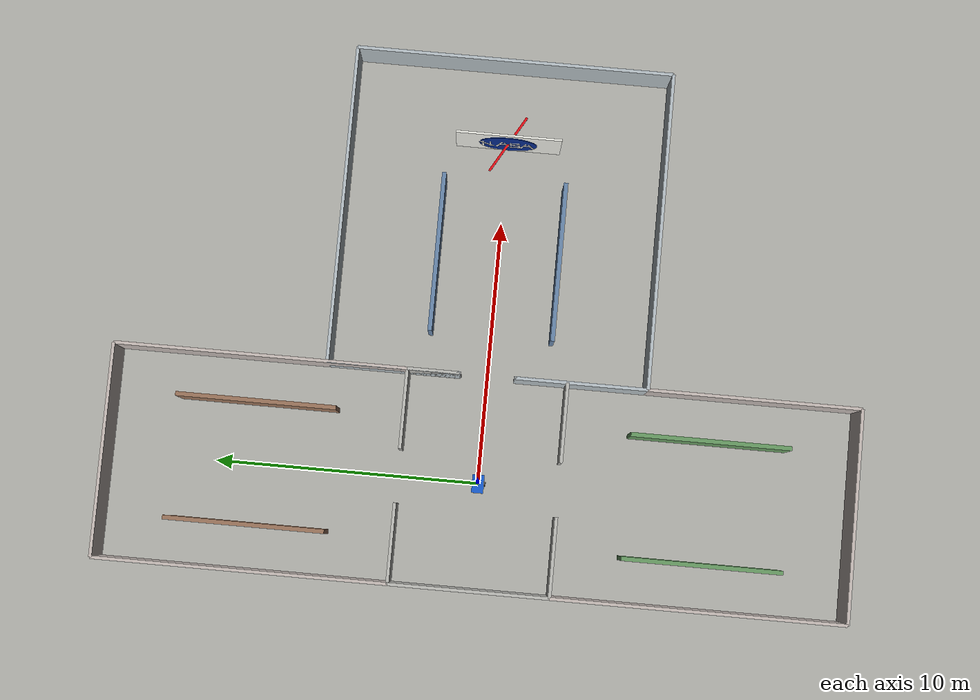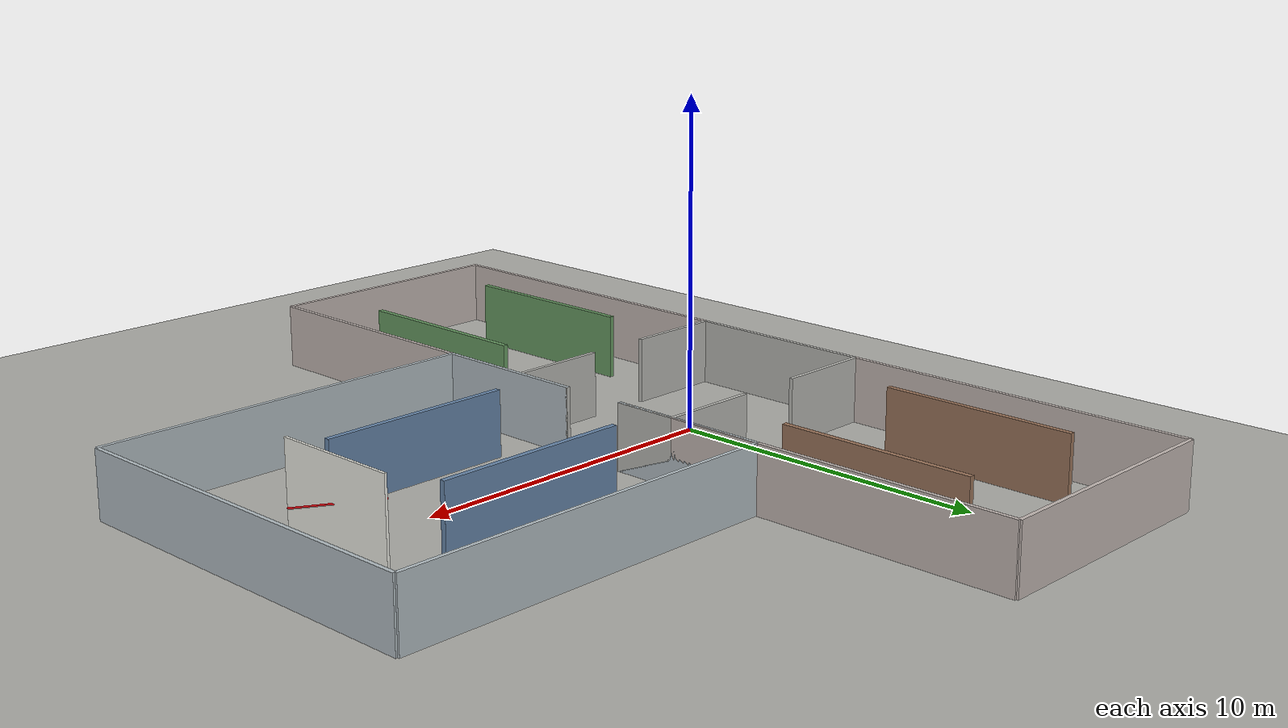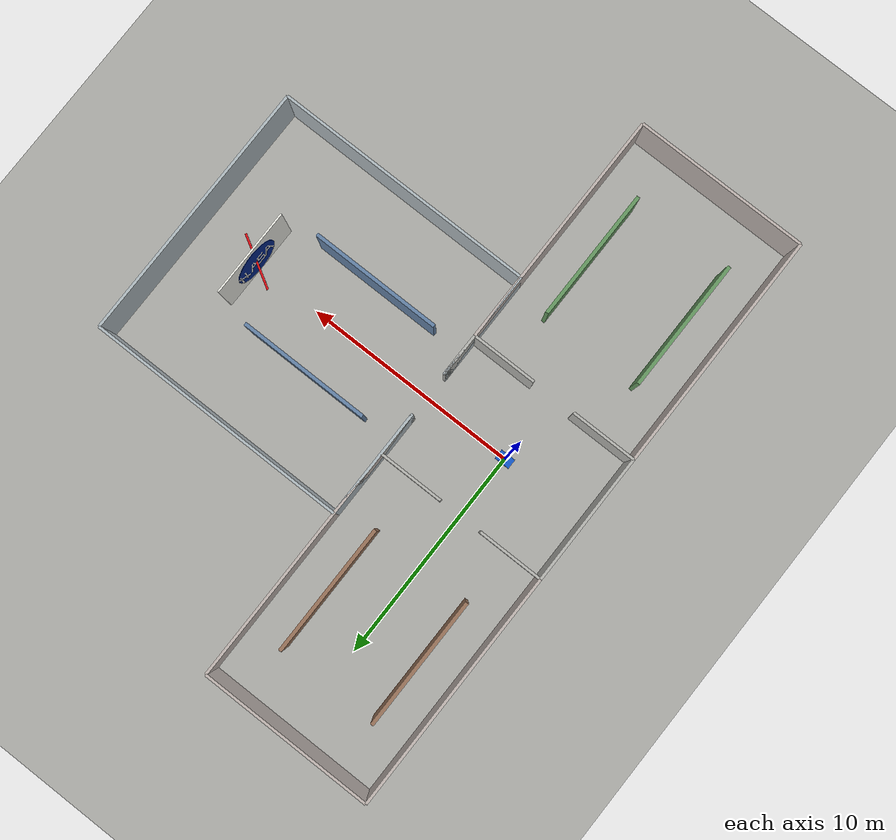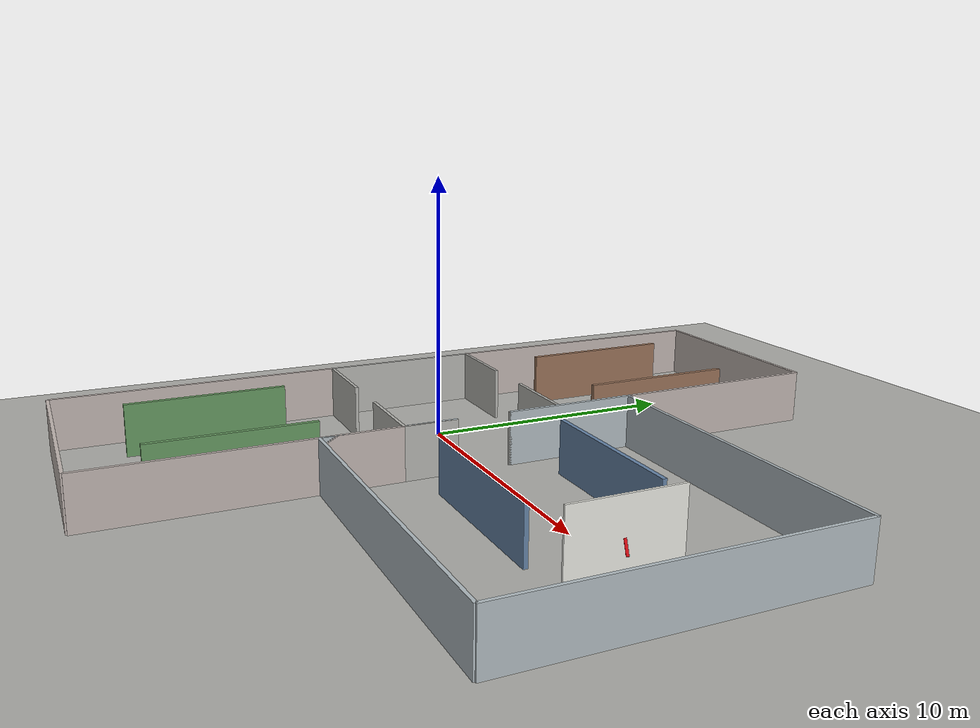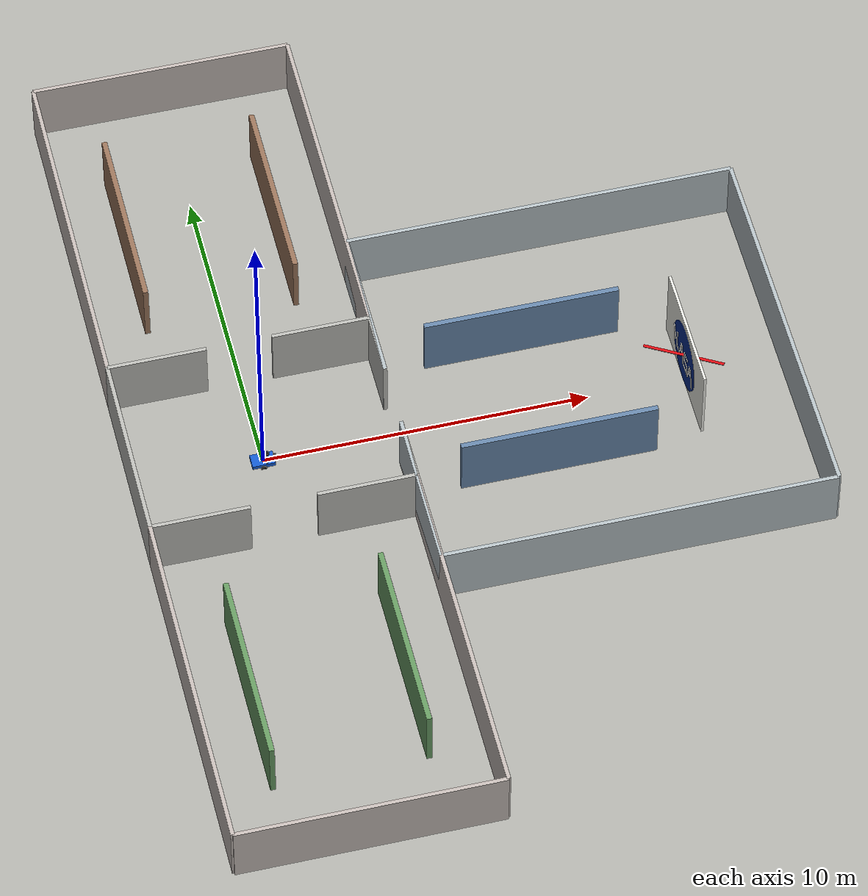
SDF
<?xml version="1.0"?>
<sdf version="1.9">
  <world name="dlio_score_ring_test">
    <plugin filename="gz-sim-physics-system" name="gz::sim::systems::Physics"/>
    <plugin filename="gz-sim-user-commands-system" name="gz::sim::systems::UserCommands"/>
    <plugin filename="gz-sim-scene-broadcaster-system" name="gz::sim::systems::SceneBroadcaster"/>
    <plugin filename="gz-sim-sensors-system" name="gz::sim::systems::Sensors">
      <render_engine>ogre2</render_engine>
    </plugin>
    <plugin filename="gz-sim-imu-system" name="gz::sim::systems::Imu"/>

    <light name="sun" type="directional">
      <pose>0 0 8 0 0 0</pose>
      <diffuse>0.85 0.85 0.85 1</diffuse>
      <specular>0.2 0.2 0.2 1</specular>
      <direction>-0.4 0.2 -1</direction>
    </light>

    <model name="ground">
      <static>true</static>
      <link name="link">
        <collision name="collision">
          <geometry>
            <plane>
              <normal>0 0 1</normal>
              <size>36 28</size>
            </plane>
          </geometry>
        </collision>
        <visual name="visual">
          <geometry>
            <plane>
              <normal>0 0 1</normal>
              <size>36 28</size>
            </plane>
          </geometry>
          <material>
            <diffuse>0.68 0.68 0.66 1</diffuse>
          </material>
        </visual>
      </link>
    </model>

    <model name="center_west_wall">
      <static>true</static>
      <pose>-4 0 1 0 0 0</pose>
      <link name="link">
        <collision name="collision"><geometry><box><size>0.12 6 2</size></box></geometry></collision>
        <visual name="visual"><geometry><box><size>0.12 6 2</size></box></geometry><material><diffuse>0.72 0.72 0.70 1</diffuse></material></visual>
      </link>
    </model>
    <model name="center_north_west_wall">
      <static>true</static>
      <pose>-2.5 3 1 0 0 0</pose>
      <link name="link">
        <collision name="collision"><geometry><box><size>3 0.12 2</size></box></geometry></collision>
        <visual name="visual"><geometry><box><size>3 0.12 2</size></box></geometry><material><diffuse>0.72 0.72 0.70 1</diffuse></material></visual>
      </link>
    </model>
    <model name="center_north_east_wall">
      <static>true</static>
      <pose>2.5 3 1 0 0 0</pose>
      <link name="link">
        <collision name="collision"><geometry><box><size>3 0.12 2</size></box></geometry></collision>
        <visual name="visual"><geometry><box><size>3 0.12 2</size></box></geometry><material><diffuse>0.72 0.72 0.70 1</diffuse></material></visual>
      </link>
    </model>
    <model name="center_south_west_wall">
      <static>true</static>
      <pose>-2.5 -3 1 0 0 0</pose>
      <link name="link">
        <collision name="collision"><geometry><box><size>3 0.12 2</size></box></geometry></collision>
        <visual name="visual"><geometry><box><size>3 0.12 2</size></box></geometry><material><diffuse>0.72 0.72 0.70 1</diffuse></material></visual>
      </link>
    </model>
    <model name="center_south_east_wall">
      <static>true</static>
      <pose>2.5 -3 1 0 0 0</pose>
      <link name="link">
        <collision name="collision"><geometry><box><size>3 0.12 2</size></box></geometry></collision>
        <visual name="visual"><geometry><box><size>3 0.12 2</size></box></geometry><material><diffuse>0.72 0.72 0.70 1</diffuse></material></visual>
      </link>
    </model>
    <model name="center_east_upper_wall">
      <static>true</static>
      <pose>4 2 1 0 0 0</pose>
      <link name="link">
        <collision name="collision"><geometry><box><size>0.12 2 2</size></box></geometry></collision>
        <visual name="visual"><geometry><box><size>0.12 2 2</size></box></geometry><material><diffuse>0.72 0.72 0.70 1</diffuse></material></visual>
      </link>
    </model>
    <model name="center_east_lower_wall">
      <static>true</static>
      <pose>4 -2 1 0 0 0</pose>
      <link name="link">
        <collision name="collision"><geometry><box><size>0.12 2 2</size></box></geometry></collision>
        <visual name="visual"><geometry><box><size>0.12 2 2</size></box></geometry><material><diffuse>0.72 0.72 0.70 1</diffuse></material></visual>
      </link>
    </model>

    <model name="east_room_north_wall">
      <static>true</static>
      <pose>10 6 1 0 0 0</pose>
      <link name="link">
        <collision name="collision"><geometry><box><size>12 0.12 2</size></box></geometry></collision>
        <visual name="visual"><geometry><box><size>12 0.12 2</size></box></geometry><material><diffuse>0.70 0.74 0.76 1</diffuse></material></visual>
      </link>
    </model>
    <model name="east_room_south_wall">
      <static>true</static>
      <pose>10 -6 1 0 0 0</pose>
      <link name="link">
        <collision name="collision"><geometry><box><size>12 0.12 2</size></box></geometry></collision>
        <visual name="visual"><geometry><box><size>12 0.12 2</size></box></geometry><material><diffuse>0.70 0.74 0.76 1</diffuse></material></visual>
      </link>
    </model>
    <model name="east_room_east_wall">
      <static>true</static>
      <pose>16 0 1 0 0 0</pose>
      <link name="link">
        <collision name="collision"><geometry><box><size>0.12 12 2</size></box></geometry></collision>
        <visual name="visual"><geometry><box><size>0.12 12 2</size></box></geometry><material><diffuse>0.70 0.74 0.76 1</diffuse></material></visual>
      </link>
    </model>
    <model name="east_room_west_upper_wall">
      <static>true</static>
      <pose>4 3.5 1 0 0 0</pose>
      <link name="link">
        <collision name="collision"><geometry><box><size>0.12 5 2</size></box></geometry></collision>
        <visual name="visual"><geometry><box><size>0.12 5 2</size></box></geometry><material><diffuse>0.70 0.74 0.76 1</diffuse></material></visual>
      </link>
    </model>
    <model name="east_room_west_lower_wall">
      <static>true</static>
      <pose>4 -3.5 1 0 0 0</pose>
      <link name="link">
        <collision name="collision"><geometry><box><size>0.12 5 2</size></box></geometry></collision>
        <visual name="visual"><geometry><box><size>0.12 5 2</size></box></geometry><material><diffuse>0.70 0.74 0.76 1</diffuse></material></visual>
      </link>
    </model>
    <model name="east_occluder_upper">
      <static>true</static>
      <pose>8.5 2.3 1 0 0 0</pose>
      <link name="link">
        <collision name="collision"><geometry><box><size>6 0.16 2</size></box></geometry></collision>
        <visual name="visual"><geometry><box><size>6 0.16 2</size></box></geometry><material><diffuse>0.40 0.52 0.66 1</diffuse></material></visual>
      </link>
    </model>
    <model name="east_occluder_lower">
      <static>true</static>
      <pose>8.5 -2.3 1 0 0 0</pose>
      <link name="link">
        <collision name="collision"><geometry><box><size>6 0.16 2</size></box></geometry></collision>
        <visual name="visual"><geometry><box><size>6 0.16 2</size></box></geometry><material><diffuse>0.40 0.52 0.66 1</diffuse></material></visual>
      </link>
    </model>

    <model name="north_room_north_wall">
      <static>true</static>
      <pose>0 14 1 0 0 0</pose>
      <link name="link">
        <collision name="collision"><geometry><box><size>8 0.12 2</size></box></geometry></collision>
        <visual name="visual"><geometry><box><size>8 0.12 2</size></box></geometry><material><diffuse>0.76 0.72 0.70 1</diffuse></material></visual>
      </link>
    </model>
    <model name="north_room_west_wall">
      <static>true</static>
      <pose>-4 8.5 1 0 0 0</pose>
      <link name="link">
        <collision name="collision"><geometry><box><size>0.12 11 2</size></box></geometry></collision>
        <visual name="visual"><geometry><box><size>0.12 11 2</size></box></geometry><material><diffuse>0.76 0.72 0.70 1</diffuse></material></visual>
      </link>
    </model>
    <model name="north_room_east_wall">
      <static>true</static>
      <pose>4 8.5 1 0 0 0</pose>
      <link name="link">
        <collision name="collision"><geometry><box><size>0.12 11 2</size></box></geometry></collision>
        <visual name="visual"><geometry><box><size>0.12 11 2</size></box></geometry><material><diffuse>0.76 0.72 0.70 1</diffuse></material></visual>
      </link>
    </model>
    <model name="north_occluder_left">
      <static>true</static>
      <pose>-2.3 8.5 1 0 0 0</pose>
      <link name="link">
        <collision name="collision"><geometry><box><size>0.16 6 2</size></box></geometry></collision>
        <visual name="visual"><geometry><box><size>0.16 6 2</size></box></geometry><material><diffuse>0.60 0.45 0.35 1</diffuse></material></visual>
      </link>
    </model>
    <model name="north_occluder_right">
      <static>true</static>
      <pose>2.3 8.5 1 0 0 0</pose>
      <link name="link">
        <collision name="collision"><geometry><box><size>0.16 6 2</size></box></geometry></collision>
        <visual name="visual"><geometry><box><size>0.16 6 2</size></box></geometry><material><diffuse>0.60 0.45 0.35 1</diffuse></material></visual>
      </link>
    </model>

    <model name="south_room_south_wall">
      <static>true</static>
      <pose>0 -14 1 0 0 0</pose>
      <link name="link">
        <collision name="collision"><geometry><box><size>8 0.12 2</size></box></geometry></collision>
        <visual name="visual"><geometry><box><size>8 0.12 2</size></box></geometry><material><diffuse>0.76 0.72 0.70 1</diffuse></material></visual>
      </link>
    </model>
    <model name="south_room_west_wall">
      <static>true</static>
      <pose>-4 -8.5 1 0 0 0</pose>
      <link name="link">
        <collision name="collision"><geometry><box><size>0.12 11 2</size></box></geometry></collision>
        <visual name="visual"><geometry><box><size>0.12 11 2</size></box></geometry><material><diffuse>0.76 0.72 0.70 1</diffuse></material></visual>
      </link>
    </model>
    <model name="south_room_east_wall">
      <static>true</static>
      <pose>4 -8.5 1 0 0 0</pose>
      <link name="link">
        <collision name="collision"><geometry><box><size>0.12 11 2</size></box></geometry></collision>
        <visual name="visual"><geometry><box><size>0.12 11 2</size></box></geometry><material><diffuse>0.76 0.72 0.70 1</diffuse></material></visual>
      </link>
    </model>
    <model name="south_occluder_left">
      <static>true</static>
      <pose>-2.3 -8.5 1 0 0 0</pose>
      <link name="link">
        <collision name="collision"><geometry><box><size>0.16 6 2</size></box></geometry></collision>
        <visual name="visual"><geometry><box><size>0.16 6 2</size></box></geometry><material><diffuse>0.40 0.60 0.38 1</diffuse></material></visual>
      </link>
    </model>
    <model name="south_occluder_right">
      <static>true</static>
      <pose>2.3 -8.5 1 0 0 0</pose>
      <link name="link">
        <collision name="collision"><geometry><box><size>0.16 6 2</size></box></geometry></collision>
        <visual name="visual"><geometry><box><size>0.16 6 2</size></box></geometry><material><diffuse>0.40 0.60 0.38 1</diffuse></material></visual>
      </link>
    </model>

    <model name="nasa_logo_target">
      <static>true</static>
      <pose>13 0 1.15 0 0 3.14159265</pose>
      <link name="link">
        <collision name="sign_collision">
          <geometry><box><size>0.10 3.6 2.4</size></box></geometry>
        </collision>
        <visual name="sign_backing">
          <geometry><box><size>0.08 4.0 2.7</size></box></geometry>
          <material><diffuse>0.93 0.93 0.90 1</diffuse></material>
        </visual>
        <visual name="blue_logo_disk">
          <pose>0.052 0 0 0 1.57079632679 0</pose>
          <geometry><cylinder><radius>1.10</radius><length>0.02</length></cylinder></geometry>
          <material><diffuse>0.02 0.16 0.55 1</diffuse></material>
        </visual>
        <visual name="red_vector">
          <pose>0.066 0 0.04 0 1.57079632679 1.04719755</pose>
          <geometry><box><size>0.025 2.50 0.090</size></box></geometry>
          <material><diffuse>0.88 0.05 0.08 1</diffuse></material>
        </visual>
        <visual name="letter_n_left"><pose>0.078 -0.96 -0.06 0 0 0</pose><geometry><box><size>0.02 0.070 0.70</size></box></geometry><material><diffuse>1 1 1 1</diffuse></material></visual>
        <visual name="letter_n_right"><pose>0.078 -0.68 -0.06 0 0 0</pose><geometry><box><size>0.02 0.070 0.70</size></box></geometry><material><diffuse>1 1 1 1</diffuse></material></visual>
        <visual name="letter_n_diag"><pose>0.08 -0.82 -0.06 0.72 0 0</pose><geometry><box><size>0.02 0.070 0.84</size></box></geometry><material><diffuse>1 1 1 1</diffuse></material></visual>
        <visual name="letter_a_left"><pose>0.078 -0.06 -0.06 0.28 0 0</pose><geometry><box><size>0.02 0.070 0.72</size></box></geometry><material><diffuse>1 1 1 1</diffuse></material></visual>
        <visual name="letter_a_right"><pose>0.078 -0.34 -0.06 -0.28 0 0</pose><geometry><box><size>0.02 0.070 0.72</size></box></geometry><material><diffuse>1 1 1 1</diffuse></material></visual>
        <visual name="letter_a_bar"><pose>0.08 -0.20 -0.04 1.57079632679 0 0</pose><geometry><box><size>0.02 0.070 0.30</size></box></geometry><material><diffuse>1 1 1 1</diffuse></material></visual>
        <visual name="letter_s_top"><pose>0.078 0.26 -0.38 1.57079632679 0 0</pose><geometry><box><size>0.02 0.070 0.36</size></box></geometry><material><diffuse>1 1 1 1</diffuse></material></visual>
        <visual name="letter_s_mid"><pose>0.078 0.26 -0.06 1.57079632679 0 0</pose><geometry><box><size>0.02 0.070 0.36</size></box></geometry><material><diffuse>1 1 1 1</diffuse></material></visual>
        <visual name="letter_s_bot"><pose>0.078 0.26 0.26 1.57079632679 0 0</pose><geometry><box><size>0.02 0.070 0.36</size></box></geometry><material><diffuse>1 1 1 1</diffuse></material></visual>
        <visual name="letter_s_left"><pose>0.078 0.10 0.10 0 0 0</pose><geometry><box><size>0.02 0.070 0.32</size></box></geometry><material><diffuse>1 1 1 1</diffuse></material></visual>
        <visual name="letter_s_right"><pose>0.078 0.42 -0.22 0 0 0</pose><geometry><box><size>0.02 0.070 0.32</size></box></geometry><material><diffuse>1 1 1 1</diffuse></material></visual>
        <visual name="letter_a2_left"><pose>0.078 0.86 -0.06 0.28 0 0</pose><geometry><box><size>0.02 0.070 0.72</size></box></geometry><material><diffuse>1 1 1 1</diffuse></material></visual>
        <visual name="letter_a2_right"><pose>0.078 0.58 -0.06 -0.28 0 0</pose><geometry><box><size>0.02 0.070 0.72</size></box></geometry><material><diffuse>1 1 1 1</diffuse></material></visual>
        <visual name="letter_a2_bar"><pose>0.08 0.72 -0.04 1.57079632679 0 0</pose><geometry><box><size>0.02 0.070 0.30</size></box></geometry><material><diffuse>1 1 1 1</diffuse></material></visual>
      </link>
    </model>

    <include>
      <uri>model://dlio_car</uri>
      <pose>0 0 0 0 0 0</pose>
    </include>
  </world>
</sdf>

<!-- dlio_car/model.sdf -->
<sdf version="1.9">
  <model name="dlio_car">
    <pose>0 0 0.12 0 0 0</pose>
    <self_collide>false</self_collide>

    <link name="base_link">
      <inertial>
        <mass>12.0</mass>
        <inertia>
          <ixx>0.20</ixx>
          <iyy>0.35</iyy>
          <izz>0.42</izz>
          <ixy>0</ixy>
          <ixz>0</ixz>
          <iyz>0</iyz>
        </inertia>
      </inertial>
      <collision name="base_collision">
        <geometry>
          <box>
            <size>0.70 0.45 0.20</size>
          </box>
        </geometry>
      </collision>
      <visual name="base_visual">
        <geometry>
          <box>
            <size>0.70 0.45 0.20</size>
          </box>
        </geometry>
        <material>
          <diffuse>0.08 0.35 0.80 1</diffuse>
        </material>
      </visual>
    </link>

    <link name="lidar">
      <pose relative_to="base_link">0.12 0 0.33 0 0 0</pose>
      <inertial>
        <mass>0.2</mass>
        <inertia>
          <ixx>0.0004</ixx>
          <iyy>0.0004</iyy>
          <izz>0.0004</izz>
          <ixy>0</ixy>
          <ixz>0</ixz>
          <iyz>0</iyz>
        </inertia>
      </inertial>
      <visual name="lidar_visual">
        <geometry>
          <cylinder>
            <radius>0.08</radius>
            <length>0.08</length>
          </cylinder>
        </geometry>
        <material>
          <diffuse>0.05 0.05 0.05 1</diffuse>
        </material>
      </visual>
      <sensor name="lidar_sensor" type="gpu_lidar">
        <topic>/points_raw</topic>
        <update_rate>10</update_rate>
        <always_on>true</always_on>
        <visualize>true</visualize>
        <ray>
          <scan>
            <horizontal>
              <samples>720</samples>
              <resolution>1</resolution>
              <min_angle>-3.14159265</min_angle>
              <max_angle>3.14159265</max_angle>
            </horizontal>
            <vertical>
              <samples>32</samples>
              <resolution>1</resolution>
              <min_angle>-0.45</min_angle>
              <max_angle>0.35</max_angle>
            </vertical>
          </scan>
          <range>
            <min>0.2</min>
            <max>18.0</max>
            <resolution>0.03</resolution>
          </range>
          <noise>
            <type>gaussian</type>
            <mean>0.0</mean>
            <stddev>0.01</stddev>
          </noise>
        </ray>
      </sensor>
    </link>

    <link name="imu">
      <pose relative_to="base_link">0 0 0.12 0 0 0</pose>
      <inertial>
        <mass>0.05</mass>
        <inertia>
          <ixx>0.00002</ixx>
          <iyy>0.00002</iyy>
          <izz>0.00002</izz>
          <ixy>0</ixy>
          <ixz>0</ixz>
          <iyz>0</iyz>
        </inertia>
      </inertial>
      <visual name="imu_visual">
        <geometry>
          <box>
            <size>0.08 0.06 0.03</size>
          </box>
        </geometry>
        <material>
          <diffuse>0.9 0.75 0.2 1</diffuse>
        </material>
      </visual>
      <sensor name="imu_sensor" type="imu">
        <topic>/imu_raw</topic>
        <update_rate>100</update_rate>
        <always_on>true</always_on>
      </sensor>
    </link>

    <link name="wildos_front_camera">
      <pose relative_to="base_link">0.36 0 0.24 0 0 0</pose>
      <inertial>
        <mass>0.08</mass>
        <inertia>
          <ixx>0.00005</ixx>
          <iyy>0.00005</iyy>
          <izz>0.00005</izz>
          <ixy>0</ixy>
          <ixz>0</ixz>
          <iyz>0</iyz>
        </inertia>
      </inertial>
      <visual name="front_camera_visual">
        <geometry>
          <box>
            <size>0.08 0.04 0.04</size>
          </box>
        </geometry>
        <material>
          <diffuse>0.05 0.05 0.05 1</diffuse>
        </material>
      </visual>
      <sensor name="front_camera_sensor" type="camera">
        <pose>0 0 0 0 0 3.14159265359</pose>
        <topic>/wildos/front/color/image_raw</topic>
        <update_rate>10</update_rate>
        <always_on>true</always_on>
        <visualize>true</visualize>
        <camera>
          <optical_frame_id>wildos_front_camera_color_optical_frame</optical_frame_id>
          <horizontal_fov>1.3962634</horizontal_fov>
          <image>
            <width>640</width>
            <height>480</height>
            <format>R8G8B8</format>
          </image>
          <clip>
            <near>0.05</near>
            <far>40.0</far>
          </clip>
        </camera>
      </sensor>
    </link>

    <link name="wildos_left_camera">
      <pose relative_to="base_link">0.08 0.25 0.24 0 0 1.57079632679</pose>
      <inertial>
        <mass>0.08</mass>
        <inertia>
          <ixx>0.00005</ixx>
          <iyy>0.00005</iyy>
          <izz>0.00005</izz>
          <ixy>0</ixy>
          <ixz>0</ixz>
          <iyz>0</iyz>
        </inertia>
      </inertial>
      <visual name="left_camera_visual">
        <geometry>
          <box>
            <size>0.08 0.04 0.04</size>
          </box>
        </geometry>
        <material>
          <diffuse>0.05 0.05 0.05 1</diffuse>
        </material>
      </visual>
      <sensor name="left_camera_sensor" type="camera">
        <pose>0 0 0 0 0 3.14159265359</pose>
        <topic>/wildos/left/color/image_raw</topic>
        <update_rate>10</update_rate>
        <always_on>true</always_on>
        <visualize>true</visualize>
        <camera>
          <optical_frame_id>wildos_left_camera_color_optical_frame</optical_frame_id>
          <horizontal_fov>1.3962634</horizontal_fov>
          <image>
            <width>640</width>
            <height>480</height>
            <format>R8G8B8</format>
          </image>
          <clip>
            <near>0.05</near>
            <far>40.0</far>
          </clip>
        </camera>
      </sensor>
    </link>

    <link name="wildos_right_camera">
      <pose relative_to="base_link">0.08 -0.25 0.24 0 0 -1.57079632679</pose>
      <inertial>
        <mass>0.08</mass>
        <inertia>
          <ixx>0.00005</ixx>
          <iyy>0.00005</iyy>
          <izz>0.00005</izz>
          <ixy>0</ixy>
          <ixz>0</ixz>
          <iyz>0</iyz>
        </inertia>
      </inertial>
      <visual name="right_camera_visual">
        <geometry>
          <box>
            <size>0.08 0.04 0.04</size>
          </box>
        </geometry>
        <material>
          <diffuse>0.05 0.05 0.05 1</diffuse>
        </material>
      </visual>
      <sensor name="right_camera_sensor" type="camera">
        <pose>0 0 0 0 0 3.14159265359</pose>
        <topic>/wildos/right/color/image_raw</topic>
        <update_rate>10</update_rate>
        <always_on>true</always_on>
        <visualize>true</visualize>
        <camera>
          <optical_frame_id>wildos_right_camera_color_optical_frame</optical_frame_id>
          <horizontal_fov>1.3962634</horizontal_fov>
          <image>
            <width>640</width>
            <height>480</height>
            <format>R8G8B8</format>
          </image>
          <clip>
            <near>0.05</near>
            <far>40.0</far>
          </clip>
        </camera>
      </sensor>
    </link>

    <link name="left_wheel">
      <pose relative_to="base_link">0 0.26 -0.04 1.57079632679 0 0</pose>
      <inertial>
        <mass>0.6</mass>
        <inertia>
          <ixx>0.002</ixx>
          <iyy>0.002</iyy>
          <izz>0.002</izz>
          <ixy>0</ixy>
          <ixz>0</ixz>
          <iyz>0</iyz>
        </inertia>
      </inertial>
      <collision name="left_wheel_collision">
        <geometry>
          <cylinder>
            <radius>0.10</radius>
            <length>0.05</length>
          </cylinder>
        </geometry>
      </collision>
      <visual name="left_wheel_visual">
        <geometry>
          <cylinder>
            <radius>0.10</radius>
            <length>0.05</length>
          </cylinder>
        </geometry>
        <material>
          <diffuse>0.02 0.02 0.02 1</diffuse>
        </material>
      </visual>
    </link>

    <link name="right_wheel">
      <pose relative_to="base_link">0 -0.26 -0.04 1.57079632679 0 0</pose>
      <inertial>
        <mass>0.6</mass>
        <inertia>
          <ixx>0.002</ixx>
          <iyy>0.002</iyy>
          <izz>0.002</izz>
          <ixy>0</ixy>
          <ixz>0</ixz>
          <iyz>0</iyz>
        </inertia>
      </inertial>
      <collision name="right_wheel_collision">
        <geometry>
          <cylinder>
            <radius>0.10</radius>
            <length>0.05</length>
          </cylinder>
        </geometry>
      </collision>
      <visual name="right_wheel_visual">
        <geometry>
          <cylinder>
            <radius>0.10</radius>
            <length>0.05</length>
          </cylinder>
        </geometry>
        <material>
          <diffuse>0.02 0.02 0.02 1</diffuse>
        </material>
      </visual>
    </link>

    <joint name="lidar_joint" type="fixed">
      <parent>base_link</parent>
      <child>lidar</child>
    </joint>
    <joint name="imu_joint" type="fixed">
      <parent>base_link</parent>
      <child>imu</child>
    </joint>
    <joint name="wildos_front_camera_joint" type="fixed">
      <parent>base_link</parent>
      <child>wildos_front_camera</child>
    </joint>
    <joint name="wildos_left_camera_joint" type="fixed">
      <parent>base_link</parent>
      <child>wildos_left_camera</child>
    </joint>
    <joint name="wildos_right_camera_joint" type="fixed">
      <parent>base_link</parent>
      <child>wildos_right_camera</child>
    </joint>
    <joint name="left_wheel_joint" type="revolute">
      <parent>base_link</parent>
      <child>left_wheel</child>
      <axis>
        <xyz>0 0 1</xyz>
      </axis>
    </joint>
    <joint name="right_wheel_joint" type="revolute">
      <parent>base_link</parent>
      <child>right_wheel</child>
      <axis>
        <xyz>0 0 1</xyz>
      </axis>
    </joint>

    <plugin filename="gz-sim-diff-drive-system" name="gz::sim::systems::DiffDrive">
      <left_joint>right_wheel_joint</left_joint>
      <right_joint>left_wheel_joint</right_joint>
      <wheel_separation>0.52</wheel_separation>
      <wheel_radius>0.10</wheel_radius>
      <topic>/cmd_vel</topic>
      <odom_topic>/gazebo/odom</odom_topic>
      <frame_id>odom</frame_id>
      <child_frame_id>base_link</child_frame_id>
    </plugin>

    <plugin filename="gz-sim-pose-publisher-system" name="gz::sim::systems::PosePublisher">
      <publish_model_pose>true</publish_model_pose>
      <publish_link_pose>false</publish_link_pose>
      <publish_collision_pose>false</publish_collision_pose>
      <publish_visual_pose>false</publish_visual_pose>
      <publish_nested_model_pose>false</publish_nested_model_pose>
      <use_pose_vector_msg>false</use_pose_vector_msg>
      <update_frequency>50</update_frequency>
    </plugin>
  </model>
</sdf>
